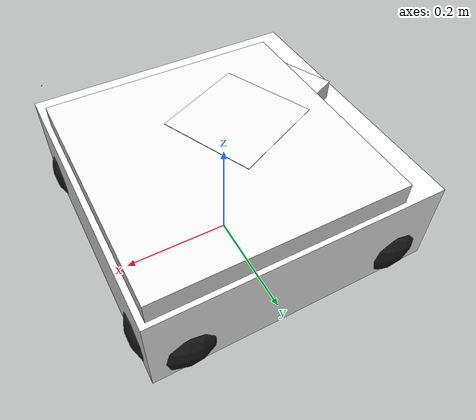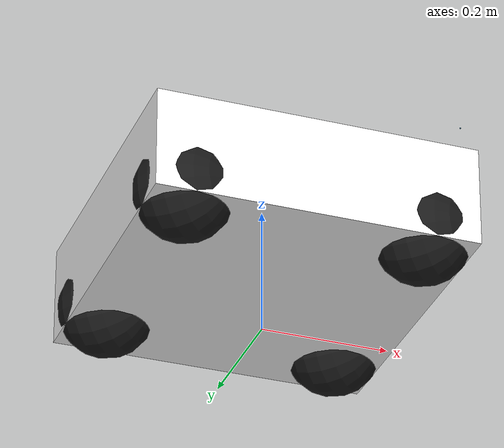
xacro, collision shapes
<?xml version="1.0"?>

<robot name="RM_9.2" xmlns:xacro="http://www.ros.org/wiki/xacro">

  <!-- Include robot base and links -->
  <xacro:include filename="$(find rm_9_2)/urdf/robot_base.xacro" />

  <!-- Include LiDAR sensor -->
  <xacro:include filename="$(find rm_9_2)/urdf/lidar.xacro" />

  <!-- Include IMU sensor -->
  <xacro:include filename="$(find rm_9_2)/urdf/imu.xacro" />

  <!-- Include ros2_control configuration -->
  <xacro:include filename="$(find rm_9_2)/urdf/ros2_control.xacro" />

  <!-- Include Gazebo plugins -->
  <xacro:include filename="$(find rm_9_2)/urdf/gazebo_plugins.xacro" />

</robot>

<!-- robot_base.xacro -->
<!-- 仿真用简化模型：视觉沿用 SolidWorks 导出的 STL，碰撞和惯量全部用基础形状。
     原始导出版本备份在 sentry/backup/cs_robot_description_20261101 -->
<robot xmlns:xacro="http://www.ros.org/wiki/xacro">

  <!-- ===== 质量参数 (kg)，按真车修改 ===== -->
  <xacro:property name="chassis_mass" value="18.0"/>
  <xacro:property name="gimbal0_mass" value="3.0"/>   <!-- 大 yaw 平台 -->
  <xacro:property name="gimbal2_mass" value="0.4"/>
  <xacro:property name="gimbal1_mass" value="0.3"/>
  <xacro:property name="gimbal3_mass" value="1.5"/>   <!-- 云台头 -->
  <xacro:property name="wheel_mass"   value="0.5"/>
  <xacro:property name="wheel_radius" value="0.076"/>
  <xacro:property name="wheel_mu"     value="0.1"/>   <!-- 轮子摩擦，底盘由 MecanumDrive2 施力驱动，摩擦越小越不拖 -->

  <!-- 实心盒子：碰撞 + 由尺寸自动算惯量 -->
  <xacro:macro name="box_body" params="m xyz x y z">
    <inertial>
      <origin xyz="${xyz}" rpy="0 0 0"/>
      <mass value="${m}"/>
      <inertia ixx="${m*(y*y+z*z)/12}" ixy="0" ixz="0" iyy="${m*(x*x+z*z)/12}" iyz="0" izz="${m*(x*x+y*y)/12}"/>
    </inertial>
    <collision>
      <origin xyz="${xyz}" rpy="0 0 0"/>
      <geometry><box size="${x} ${y} ${z}"/></geometry>
    </collision>
  </xacro:macro>

  <!-- 轮子用球：姿态无关，避免各轮导出坐标系不一致的问题 -->
  <xacro:macro name="wheel_body" params="xyz">
    <inertial>
      <origin xyz="${xyz}" rpy="0 0 0"/>
      <mass value="${wheel_mass}"/>
      <inertia ixx="${0.4*wheel_mass*wheel_radius*wheel_radius}" ixy="0" ixz="0" iyy="${0.4*wheel_mass*wheel_radius*wheel_radius}" iyz="0" izz="${0.4*wheel_mass*wheel_radius*wheel_radius}"/>
    </inertial>
    <collision>
      <origin xyz="${xyz}" rpy="0 0 0"/>
      <geometry><sphere radius="${wheel_radius}"/></geometry>
    </collision>
  </xacro:macro>
  <link name="base_link">
    <xacro:box_body m="${chassis_mass}" xyz="0 0 0.14" x="0.50" y="0.50" z="0.16"/>
    <visual>
      <origin xyz="0 0 0" rpy="0 0 0"/>
      <geometry><mesh filename="package://rm_9_2/meshes/base_link.STL"/></geometry>
      <material name="base_link_mat"><color rgba="1 1 1 1"/></material>
    </visual>
  </link>
  <!-- ===== 云台（折叠机构）：0 为大 yaw，1/3 为两根平行水平轴 ===== -->
  <link name="0_Link">
    <xacro:box_body m="${gimbal0_mass}" xyz="0.03 0.03 0.118" x="0.42" y="0.42" z="0.183"/>
    <visual>
      <origin xyz="0 0 0" rpy="0 0 0"/>
      <geometry><mesh filename="package://rm_9_2/meshes/0_Link.STL"/></geometry>
      <material name="0_Link_mat"><color rgba="0.929411764705882 0.929411764705882 0.929411764705882 1"/></material>
    </visual>
  </link>
  <joint name="0_joint" type="revolute">
    <origin xyz="0.00016203 0.0017341 0.049" rpy="0 0 0"/>
    <parent link="base_link"/>
    <child link="0_Link"/>
    <axis xyz="0 0 1"/>
    <limit lower="${-pi}" upper="${pi}" effort="50" velocity="5"/>
  </joint>
  <link name="2_Link">
    <xacro:box_body m="${gimbal2_mass}" xyz="0.034 0.047 0.013" x="0.131" y="0.156" z="0.056"/>
    <visual>
      <origin xyz="0 0 0" rpy="0 0 0"/>
      <geometry><mesh filename="package://rm_9_2/meshes/2_Link.STL"/></geometry>
      <material name="2_Link_mat"><color rgba="0.0823529411764706 0.0823529411764706 0.0823529411764706 1"/></material>
    </visual>
  </link>
  <joint name="2_joint" type="revolute">
    <origin xyz="-0.13474 -0.061646 0.11285" rpy="0 0 0"/>
    <parent link="0_Link"/>
    <child link="2_Link"/>
    <axis xyz="0 0 1"/>
    <limit lower="${-pi}" upper="${pi}" effort="50" velocity="5"/>
  </joint>
  <link name="1_Link">
    <xacro:box_body m="${gimbal1_mass}" xyz="0.029 0.061 -0.04" x="0.107" y="0.172" z="0.167"/>
    <visual>
      <origin xyz="0 0 0" rpy="0 0 0"/>
      <geometry><mesh filename="package://rm_9_2/meshes/1_Link.STL"/></geometry>
      <material name="1_Link_mat"><color rgba="0.929411764705882 0.929411764705882 0.929411764705882 1"/></material>
    </visual>
  </link>
  <joint name="1_joint" type="revolute">
    <origin xyz="0.031859 0.062468 0.015" rpy="-1.1408 -1.5708 0"/>
    <parent link="2_Link"/>
    <child link="1_Link"/>
    <axis xyz="0 0 -1"/>
    <limit lower="${-pi}" upper="${pi}" effort="50" velocity="5"/>
  </joint>
  <link name="3_Link">
    <xacro:box_body m="${gimbal3_mass}" xyz="0.004 -0.091 0.048" x="0.057" y="0.288" z="0.168"/>
    <visual>
      <origin xyz="0 0 0" rpy="0 0 0"/>
      <geometry><mesh filename="package://rm_9_2/meshes/3_Link.STL"/></geometry>
      <material name="3_Link_mat"><color rgba="0.929411764705882 0.929411764705882 0.929411764705882 1"/></material>
    </visual>
  </link>
  <joint name="3_joint" type="revolute">
    <origin xyz="0.054117 0.1182 -0.0065" rpy="-3.1416 0 3.1416"/>
    <parent link="1_Link"/>
    <child link="3_Link"/>
    <axis xyz="0 0 1"/>
    <limit lower="${-pi}" upper="${pi}" effort="50" velocity="5"/>
  </joint>
  <!-- ===== 轮子：被动转动，仅视觉和支撑 ===== -->
  <link name="L1_Link">
    <xacro:wheel_body xyz="0 0 -0.025"/>
    <visual>
      <origin xyz="0 0 0" rpy="3.14 0 0"/>
      <geometry><mesh filename="package://rm_9_2/meshes/L1_Link.STL"/></geometry>
      <material name="L1_Link_mat"><color rgba="0.1 0.1 0.1 1"/></material>
    </visual>
  </link>
  <gazebo reference="L1_Link">
    <mu1>${wheel_mu}</mu1>
    <mu2>${wheel_mu}</mu2>
  </gazebo>
  <joint name="L1_JOINT" type="continuous">
    <origin xyz="-0.16707 0.16896 0.09735" rpy="2.3562 -1.5708 0"/>
    <parent link="base_link"/>
    <child link="L1_Link"/>
    <axis xyz="0 0 -1"/>
    <limit effort="10" velocity="100"/>
  </joint>
  <link name="L2_Link">
    <xacro:wheel_body xyz="0 0.025 0"/>
    <visual>
      <origin xyz="0 0 0" rpy="-1.57 0 0"/>
      <geometry><mesh filename="package://rm_9_2/meshes/L2_Link.STL"/></geometry>
      <material name="L2_Link_mat"><color rgba="0.1 0.1 0.1 1"/></material>
    </visual>
  </link>
  <gazebo reference="L2_Link">
    <mu1>${wheel_mu}</mu1>
    <mu2>${wheel_mu}</mu2>
  </gazebo>
  <joint name="L2_JOINT" type="continuous">
    <origin xyz="0.16739 0.16896 0.09735" rpy="0.7854 1.5708 0"/>
    <parent link="base_link"/>
    <child link="L2_Link"/>
    <axis xyz="0 1 0"/>
    <limit effort="10" velocity="100"/>
  </joint>
  <link name="L3_Link">
    <xacro:wheel_body xyz="0 0 0.025"/>
    <visual>
      <origin xyz="0 0 0" rpy="0 0 0"/>
      <geometry><mesh filename="package://rm_9_2/meshes/L3_Link.STL"/></geometry>
      <material name="L3_Link_mat"><color rgba="0.1 0.1 0.1 1"/></material>
    </visual>
  </link>
  <gazebo reference="L3_Link">
    <mu1>${wheel_mu}</mu1>
    <mu2>${wheel_mu}</mu2>
  </gazebo>
  <joint name="L3_JOINT" type="continuous">
    <origin xyz="0.16739 -0.1655 0.09735" rpy="0.7854 1.5708 0"/>
    <parent link="base_link"/>
    <child link="L3_Link"/>
    <axis xyz="0 0 1"/>
    <limit effort="10" velocity="100"/>
  </joint>
  <link name="L4_Link">
    <xacro:wheel_body xyz="0 0.025 0"/>
    <visual>
      <origin xyz="0 0 0" rpy="-1.57 0 0"/>
      <geometry><mesh filename="package://rm_9_2/meshes/L4_Link.STL"/></geometry>
      <material name="L4_Link_mat"><color rgba="0.1 0.1 0.1 1"/></material>
    </visual>
  </link>
  <gazebo reference="L4_Link">
    <mu1>${wheel_mu}</mu1>
    <mu2>${wheel_mu}</mu2>
  </gazebo>
  <joint name="L4_JOINT" type="continuous">
    <origin xyz="-0.167068721301789 -0.165496637547365 0.0973500000000011" rpy="2.35619449019234 -1.5707963267949 0"/>
    <parent link="base_link"/>
    <child link="L4_Link"/>
    <axis xyz="0 1 0"/>
    <limit effort="10" velocity="100"/>
  </joint>
</robot>

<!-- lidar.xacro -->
<robot xmlns:xacro="http://www.ros.org/wiki/xacro">

  <!-- Mid360 LiDAR Link -->
  <link name="mid360">
    <inertial>
      <origin xyz="0 0 0.02" rpy="0 0 0"/>
      <mass value="0.005"/>
      <inertia ixx="0.0000021667" ixy="0.0" ixz="0.0" iyy="0.0000021667" iyz="0.0" izz="0.000004"/>
    </inertial>
    <visual>
      <origin xyz="0 0 0" rpy="0 0 3.14159265359"/>
      <geometry>
        <mesh filename="package://rm_9_2/models/mid360/meshes/mid360.dae"/>
      </geometry>
    </visual>
    <collision>
      <origin xyz="0 0 0.02" rpy="0 0 0"/>
      <geometry>
        <cylinder radius="0.001" length="0.001"/>
      </geometry>
    </collision>
  </link>

  <!-- Mid360 LiDAR Joint -->
  <joint name="mid360_joint" type="fixed">
    <parent link="base_link"/>
    <child link="mid360"/>
    <origin xyz="0.222 -0.222 0.25" rpy="0.67 0 0.78"/>
  </joint>

  <!-- Mid360 LiDAR — Ignition gpu_lidar sensor -->
  <gazebo reference="mid360">
    <sensor name="mid360_lidar" type="gpu_lidar">
      <pose>0 0 0.03 0 0 0</pose>
      <always_on>true</always_on>
      <visualize>true</visualize>
      <update_rate>10</update_rate>
      <lidar>
        <scan>
          <horizontal>
            <samples>1500</samples>
            <resolution>1.0</resolution>
            <min_angle>0</min_angle>
            <max_angle>6.2831852</max_angle>
          </horizontal>
          <vertical>
            <samples>32</samples>
            <resolution>1.0</resolution>
            <min_angle>-0.12217304764</min_angle>
            <max_angle>0.90757121104</max_angle>
          </vertical>
        </scan>
        <range>
          <min>0.1</min>
          <max>40.0</max>
          <resolution>0.01</resolution>
        </range>
        <noise>
          <type>gaussian</type>
          <mean>0.0</mean>
          <stddev>0.01</stddev>
        </noise>
      </lidar>
      <topic>/lidar</topic>
    </sensor>

    <!-- Mid360 IMU — Ignition imu sensor -->
    <sensor name="mid360_imu" type="imu">
      <always_on>true</always_on>
      <update_rate>200</update_rate>
      <topic>/imu/mid360</topic>
    </sensor>
  </gazebo>

</robot>

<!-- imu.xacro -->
<robot xmlns:xacro="http://www.ros.org/wiki/xacro">

  <!-- IMU Link -->
  <link name="imu_link">
    <inertial>
      <origin xyz="0 0 0" rpy="0 0 0"/>
      <mass value="0.001"/>
      <inertia ixx="0.000001" ixy="0.0" ixz="0.0" iyy="0.000001" iyz="0.0" izz="0.000001"/>
    </inertial>
    <visual>
      <origin xyz="0 0 0" rpy="0 0 0"/>
      <geometry>
        <box size="0.02 0.02 0.01"/>
      </geometry>
      <material name="">
        <color rgba="0.2 0.2 0.8 1"/>
      </material>
    </visual>
    <collision>
      <origin xyz="0 0 0" rpy="0 0 0"/>
      <geometry>
        <box size="0.02 0.02 0.01"/>
      </geometry>
    </collision>
  </link>

  <!-- IMU Joint -->
  <joint name="imu_joint" type="fixed">
    <parent link="base_link"/>
    <child link="imu_link"/>
    <origin xyz="0 0 0.17" rpy="0 0 0"/>
  </joint>

  <!-- IMU Sensor — Ignition imu sensor -->
  <gazebo reference="imu_link">
    <sensor name="imu_sensor" type="imu">
      <always_on>true</always_on>
      <update_rate>200</update_rate>
      <imu>
        <angular_velocity>
          <x><noise type="gaussian"><mean>0.0</mean><stddev>0.0002</stddev><bias_mean>0.0000075</bias_mean><bias_stddev>0.0000008</bias_stddev></noise></x>
          <y><noise type="gaussian"><mean>0.0</mean><stddev>0.0002</stddev><bias_mean>0.0000075</bias_mean><bias_stddev>0.0000008</bias_stddev></noise></y>
          <z><noise type="gaussian"><mean>0.0</mean><stddev>0.0002</stddev><bias_mean>0.0000075</bias_mean><bias_stddev>0.0000008</bias_stddev></noise></z>
        </angular_velocity>
        <linear_acceleration>
          <x><noise type="gaussian"><mean>0.0</mean><stddev>0.017</stddev><bias_mean>0.1</bias_mean><bias_stddev>0.001</bias_stddev></noise></x>
          <y><noise type="gaussian"><mean>0.0</mean><stddev>0.017</stddev><bias_mean>0.1</bias_mean><bias_stddev>0.001</bias_stddev></noise></y>
          <z><noise type="gaussian"><mean>0.0</mean><stddev>0.017</stddev><bias_mean>0.1</bias_mean><bias_stddev>0.001</bias_stddev></noise></z>
        </linear_acceleration>
      </imu>
      <topic>/imu/data</topic>
    </sensor>
  </gazebo>

</robot>
